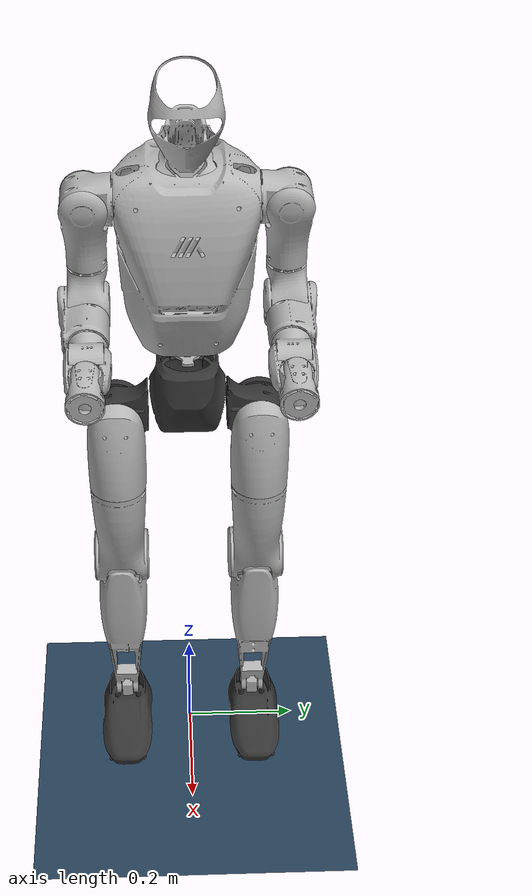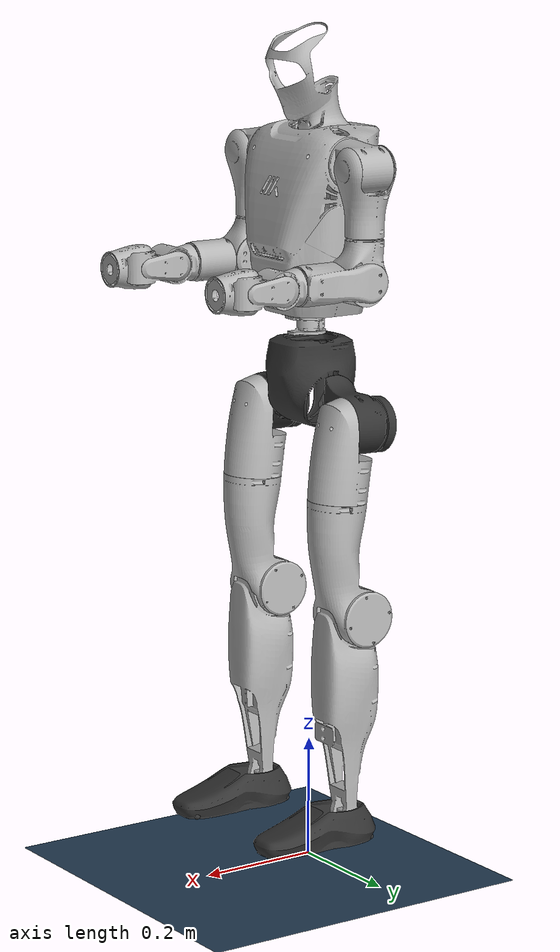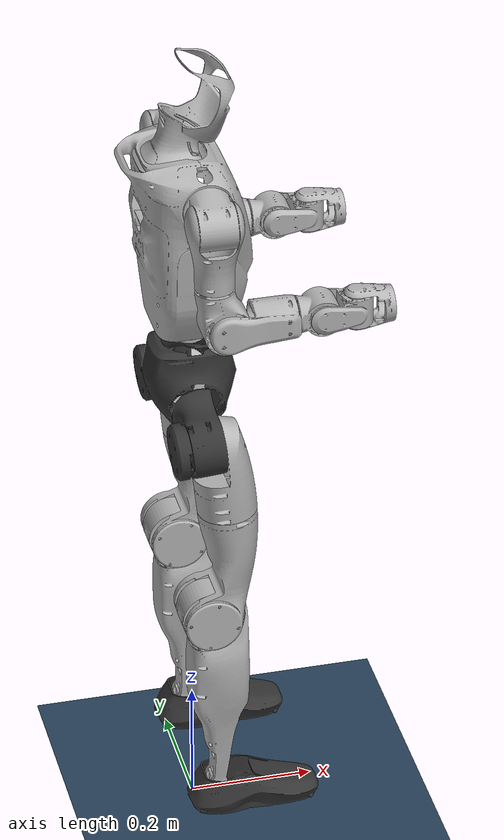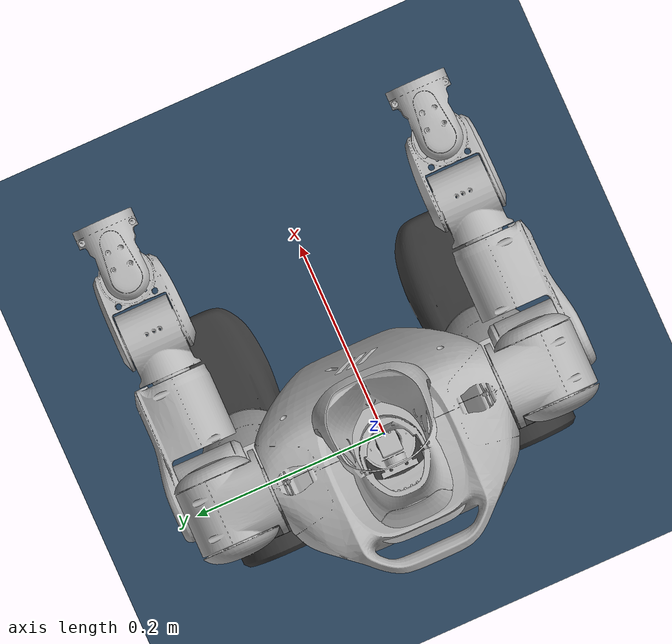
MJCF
<mujoco model="scene_o1">
  <include file="o1.xml"/>

  <statistic center="1.0 0.7 1.0" extent="0.8"/>

  <visual>
    <headlight diffuse="0.6 0.6 0.6" ambient="0.1 0.1 0.1" specular="0.9 0.9 0.9"/>
    <rgba haze="0.15 0.25 0.35 1"/>
    <global azimuth="-140" elevation="-20" offheight="1280" offwidth="1280"/>
  </visual>

  <asset>
    <texture type="skybox" builtin="flat" rgb1="0 0 0" rgb2="0 0 0" width="512" height="3072"/>
    <texture type="2d" name="groundplane" builtin="checker" mark="edge" rgb1="0.2 0.3 0.4" rgb2="0.1 0.2 0.3" markrgb="0.8 0.8 0.8" width="300" height="300"/>
    <material name="groundplane" texture="groundplane" texuniform="true" texrepeat="5 5" reflectance="0.2"/>
  </asset>

  <worldbody>
    <light pos="1 0 3.5" dir="0 0 -1" directional="true"/>
    <geom name="floor" size="0 0 0.05" type="plane" material="groundplane"/>
  </worldbody>
</mujoco>

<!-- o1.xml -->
<mujoco model="o1_29dof">
  <compiler angle="radian" meshdir="meshes/"/>
<default>
    <joint damping="0.001" armature="0.01" frictionloss="0.1"/>
  </default>

  <asset>
    <mesh name="pelvis" file="pelvis.STL"/>
    <mesh name="left_hip_pitch_link" file="left_hip_pitch_link.STL"/>
    <mesh name="left_hip_roll_link" file="left_hip_roll_link.STL"/>
    <mesh name="left_hip_yaw_link" file="left_hip_yaw_link.STL"/>
    <mesh name="left_knee_pitch_link" file="left_knee_pitch_link.STL"/>
    <mesh name="left_ankle_pitch_link" file="left_ankle_pitch_link.STL"/>
    <mesh name="left_ankle_roll_link" file="left_ankle_roll_link.STL"/>
    <mesh name="right_hip_pitch_link" file="right_hip_pitch_link.STL"/>
    <mesh name="right_hip_roll_link" file="right_hip_roll_link.STL"/>
    <mesh name="right_hip_yaw_link" file="right_hip_yaw_link.STL"/>
    <mesh name="right_knee_pitch_link" file="right_knee_pitch_link.STL"/>
    <mesh name="right_ankle_pitch_link" file="right_ankle_pitch_link.STL"/>
    <mesh name="right_ankle_roll_link" file="right_ankle_roll_link.STL"/>
    <mesh name="waist_yaw_link" file="waist_yaw_link.STL"/>
    <mesh name="waist_roll_link" file="waist_roll_link.STL"/>
    <mesh name="torso_link" file="torso_link.STL"/>
    <mesh name="left_shoulder_pitch_link" file="left_shoulder_pitch_link.STL"/>
    <mesh name="left_shoulder_roll_link" file="left_shoulder_roll_link.STL"/>
    <mesh name="left_shoulder_yaw_link" file="left_shoulder_yaw_link.STL"/>
    <mesh name="left_elbow_pitch_link" file="left_elbow_pitch_link.STL"/>
    <mesh name="left_wrist_roll_link" file="left_wrist_roll_link.STL"/>
    <mesh name="left_wrist_pitch_link" file="left_wrist_pitch_link.STL"/>
    <mesh name="left_wrist_yaw_link" file="left_wrist_yaw_link.STL"/>
    <mesh name="right_shoulder_pitch_link" file="right_shoulder_pitch_link.STL"/>
    <mesh name="right_shoulder_roll_link" file="right_shoulder_roll_link.STL"/>
    <mesh name="right_shoulder_yaw_link" file="right_shoulder_yaw_link.STL"/>
    <mesh name="right_elbow_pitch_link" file="right_elbow_pitch_link.STL"/>
    <mesh name="right_wrist_roll_link" file="right_wrist_roll_link.STL"/>
    <mesh name="right_wrist_pitch_link" file="right_wrist_pitch_link.STL"/>
    <mesh name="right_wrist_yaw_link" file="right_wrist_yaw_link.STL"/>
    <mesh name="head_link" file="head_link.STL"/>
  </asset>

  <worldbody>
    <body name="pelvis" pos="0 0 0.78">
      <inertial pos="-1.599e-05 -0.00036044 0.0268361" quat="0.999813 0.0193289 0.000435973 -0.00084459" mass="3.68" diaginertia="0.0115785 0.00849884 0.00728878"/>
      <joint name="floating_base_joint" type="free" limited="false" actuatorfrclimited="false"/>
      <geom type="mesh" contype="0" conaffinity="0" group="1" density="0" rgba="0.2 0.2 0.2 1" mesh="pelvis"/>
      <geom type="mesh" rgba="0.2 0.2 0.2 1" mesh="pelvis"/>
      <body name="left_hip_pitch_link" pos="0 0.06525 0">
        <inertial pos="-0.00600842 0.0509883 -0.0259192" quat="0.931173 -0.357857 0.0202959 0.0666512" mass="1.38" diaginertia="0.00174196 0.00155095 0.00125847"/>
        <joint name="left_hip_pitch_joint" pos="0 0 0" axis="0 1 0" range="-2.63845 2.77207" actuatorfrcrange="-88 88"/>
        <geom type="mesh" contype="0" conaffinity="0" group="1" density="0" rgba="0.2 0.2 0.2 1" mesh="left_hip_pitch_link"/>
        <geom type="mesh" rgba="0.2 0.2 0.2 1" mesh="left_hip_pitch_link"/>
        <body name="left_hip_roll_link" pos="0 0.05494 -0.028701" quat="0.999442 0 -0.0333983 0">
          <inertial pos="0.0263765 2.176e-05 -0.0784764" quat="0.99541 0.00246934 -0.0954622 0.00634345" mass="1.55653" diaginertia="0.0029764 0.0028336 0.00165331"/>
          <joint name="left_hip_roll_joint" pos="0 0 0" axis="1 0 0" range="-0.3 2.89397" actuatorfrcrange="-88 88"/>
          <geom type="mesh" contype="0" conaffinity="0" group="1" density="0" rgba="0.7 0.7 0.7 1" mesh="left_hip_roll_link"/>
          <geom type="mesh" rgba="0.7 0.7 0.7 1" mesh="left_hip_roll_link"/>
          <body name="left_hip_yaw_link" pos="0.023639 0 -0.11812">
            <inertial pos="-0.0119008 0.00519796 -0.0974908" quat="0.948125 -0.0101561 -0.113954 -0.296597" mass="0.683572" diaginertia="0.00473202 0.0044081 0.00113266"/>
            <joint name="left_hip_yaw_joint" pos="0 0 0" axis="0 0 1" range="-2.79253 2.79253" actuatorfrcrange="-88 88"/>
            <geom type="mesh" contype="0" conaffinity="0" group="1" density="0" rgba="0.7 0.7 0.7 1" mesh="left_hip_yaw_link"/>
            <geom type="mesh" rgba="0.7 0.7 0.7 1" mesh="left_hip_yaw_link"/>
            <body name="left_knee_pitch_link" pos="-0.044387 0 -0.19197" quat="0.999442 0 0.0333983 0">
              <inertial pos="0.0114074 0.00239698 -0.0846153" quat="0.456818 0.0522273 0.0142858 0.887911" mass="3.66174" diaginertia="0.0330133 0.0326303 0.00299548"/>
              <joint name="left_knee_pitch_joint" pos="0 0 0" axis="0 1 0" range="-0.138956 2.7932" actuatorfrcrange="-140 140"/>
              <geom type="mesh" contype="0" conaffinity="0" group="1" density="0" rgba="0.7 0.7 0.7 1" mesh="left_knee_pitch_link"/>
              <geom type="mesh" rgba="0.7 0.7 0.7 1" mesh="left_knee_pitch_link"/>
              <body name="left_ankle_pitch_link" pos="0.012516 0 -0.33638">
                <inertial pos="-0.00054559 0.00050204 -0.00344178" quat="0.699906 0.100656 0.100656 0.699906" mass="0.083335" diaginertia="0.01 0.01 0.01"/>
                <joint name="left_ankle_pitch_joint" pos="0 0 0" axis="0 1 0" range="-0.992614 0.399939" actuatorfrcrange="-54 54"/>
                <geom type="mesh" contype="0" conaffinity="0" group="1" density="0" rgba="0.7 0.7 0.7 1" mesh="left_ankle_pitch_link"/>
                <geom type="mesh" rgba="0.7 0.7 0.7 1" mesh="left_ankle_pitch_link"/>
                <body name="left_ankle_roll_link" pos="0 0.00050204 -0.01">
                  <inertial pos="0.0438572 6.323e-05 -0.0134285" quat="-8.14506e-05 0.691274 -7.25609e-05 0.722593" mass="0.679694" diaginertia="0.01 0.01 0.01"/>
                  <joint name="left_ankle_roll_joint" pos="0 0 0" axis="1 0 0" range="-0.241984 0.241984" actuatorfrcrange="-54 54"/>
                  <geom type="mesh" contype="0" conaffinity="0" group="1" density="0" rgba="0.2 0.2 0.2 1" mesh="left_ankle_roll_link"/>
                  <geom size="0.005" pos="-0.03 0.03 -0.025" rgba="0.2 0.2 0.2 1"/>
                  <geom size="0.005" pos="-0.03 -0.03 -0.025" rgba="0.2 0.2 0.2 1"/>
                  <geom size="0.005" pos="0.15 0.03 -0.025" rgba="0.2 0.2 0.2 1"/>
                  <geom size="0.005" pos="0.15 -0.03 -0.025" rgba="0.2 0.2 0.2 1"/>
                </body>
              </body>
            </body>
          </body>
        </body>
      </body>
      <body name="right_hip_pitch_link" pos="0 -0.06525 0">
        <inertial pos="-0.00600865 -0.0509881 -0.025919" quat="0.931181 0.357853 0.0202793 -0.0665722" mass="1.38353" diaginertia="0.0017419 0.00155089 0.00125844"/>
        <joint name="right_hip_pitch_joint" pos="0 0 0" axis="0 1 0" range="-2.63845 2.77207" actuatorfrcrange="-88 88"/>
        <geom type="mesh" contype="0" conaffinity="0" group="1" density="0" rgba="0.2 0.2 0.2 1" mesh="right_hip_pitch_link"/>
        <geom type="mesh" rgba="0.2 0.2 0.2 1" mesh="right_hip_pitch_link"/>
        <body name="right_hip_roll_link" pos="0 -0.05494 -0.028701" quat="0.999442 0 -0.0333983 0">
          <inertial pos="0.0263762 -2.235e-05 -0.0784785" quat="0.995409 -0.00254847 -0.0954755 -0.00616215" mass="1.5565" diaginertia="0.002976 0.00283321 0.00165331"/>
          <joint name="right_hip_roll_joint" pos="0 0 0" axis="1 0 0" range="-2.89397 0.3" actuatorfrcrange="-88 88"/>
          <geom type="mesh" contype="0" conaffinity="0" group="1" density="0" rgba="0.7 0.7 0.7 1" mesh="right_hip_roll_link"/>
          <geom type="mesh" rgba="0.7 0.7 0.7 1" mesh="right_hip_roll_link"/>
          <body name="right_hip_yaw_link" pos="0.023639 0 -0.11812">
            <inertial pos="-0.0118993 -0.00519873 -0.0974956" quat="0.948243 0.0101971 -0.11393 0.296228" mass="0.683543" diaginertia="0.00473214 0.00440845 0.00113289"/>
            <joint name="right_hip_yaw_joint" pos="0 0 0" axis="0 0 1" range="-2.79253 2.79253" actuatorfrcrange="-88 88"/>
            <geom type="mesh" contype="0" conaffinity="0" group="1" density="0" rgba="0.7 0.7 0.7 1" mesh="right_hip_yaw_link"/>
            <geom type="mesh" rgba="0.7 0.7 0.7 1" mesh="right_hip_yaw_link"/>
            <body name="right_knee_pitch_link" pos="-0.044387 0 -0.19197" quat="0.999442 0 0.0333983 0">
              <inertial pos="0.0114075 -0.00239511 -0.0846161" quat="0.887949 0.0142744 0.0522332 0.456744" mass="3.66178" diaginertia="0.0330136 0.0326303 0.00299555"/>
              <joint name="right_knee_pitch_joint" pos="0 0 0" axis="0 1 0" range="-0.138956 2.7932" actuatorfrcrange="-140 140"/>
              <geom type="mesh" contype="0" conaffinity="0" group="1" density="0" rgba="0.7 0.7 0.7 1" mesh="right_knee_pitch_link"/>
              <geom type="mesh" rgba="0.7 0.7 0.7 1" mesh="right_knee_pitch_link"/>
              <body name="right_ankle_pitch_link" pos="0.012516 0 -0.33638">
                <inertial pos="-0.00054559 -0.00050204 -0.00344178" quat="0.699906 0.100656 0.100656 0.699906" mass="0.083335" diaginertia="0.01 0.01 0.01"/>
                <joint name="right_ankle_pitch_joint" pos="0 0 0" axis="0 1 0" range="-0.992614 0.399939" actuatorfrcrange="-54 54"/>
                <geom type="mesh" contype="0" conaffinity="0" group="1" density="0" rgba="0.7 0.7 0.7 1" mesh="right_ankle_pitch_link"/>
                <geom type="mesh" rgba="0.7 0.7 0.7 1" mesh="right_ankle_pitch_link"/>
                <body name="right_ankle_roll_link" pos="0 -0.00050204 -0.01">
                  <inertial pos="0.0438572 -4.677e-05 -0.0134286" quat="2.92084e-05 0.69127 -4.72349e-05 0.722596" mass="0.67971" diaginertia="0.01 0.01 0.01"/>
                  <joint name="right_ankle_roll_joint" pos="0 0 0" axis="1 0 0" range="-0.241984 0.241984" actuatorfrcrange="-54 54"/>
                  <geom type="mesh" contype="0" conaffinity="0" group="1" density="0" rgba="0.2 0.2 0.2 1" mesh="right_ankle_roll_link"/>
                  <geom size="0.005" pos="-0.03 0.03 -0.025" rgba="0.2 0.2 0.2 1"/>
                  <geom size="0.005" pos="-0.03 -0.03 -0.025" rgba="0.2 0.2 0.2 1"/>
                  <geom size="0.005" pos="0.15 0.03 -0.025" rgba="0.2 0.2 0.2 1"/>
                  <geom size="0.005" pos="0.15 -0.03 -0.025" rgba="0.2 0.2 0.2 1"/>
                </body>
              </body>
            </body>
          </body>
        </body>
      </body>
      <body name="waist_yaw_link" pos="0 0 0.104">
        <inertial pos="0.00530711 4.75e-06 0.0216269" quat="-0.000928709 0.776809 0.000152463 0.629736" mass="0.142512" diaginertia="7.3223e-05 6.657e-05 4.8617e-05"/>
        <joint name="waist_yaw_joint" pos="0 0 0" axis="0 0 1" range="-2.61799 2.61799" actuatorfrcrange="-88 88"/>
        <geom type="mesh" contype="0" conaffinity="0" group="1" density="0" rgba="0.7 0.7 0.7 1" mesh="waist_yaw_link"/>
        <body name="waist_roll_link" pos="-0.0017722 0 0.047">
          <inertial pos="0 0 0" quat="0.505983 0.493944 0.493944 0.505983" mass="0.054" diaginertia="5.58e-06 5.14096e-06 3.47904e-06"/>
          <joint name="waist_roll_joint" pos="0 0 0" axis="1 0 0" range="-0.520108 0.520108" actuatorfrcrange="-54 54"/>
          <geom type="mesh" contype="0" conaffinity="0" group="1" density="0" rgba="0.7 0.7 0.7 1" mesh="waist_roll_link"/>
          <body name="torso_link">
            <inertial pos="-0.0116252 0.00012937 0.162902" quat="0.999409 0.00134464 0.0343416 -0.000215167" mass="8.45" diaginertia="0.123591 0.109527 0.0375367"/>
            <joint name="waist_pitch_joint" pos="0 0 0" axis="0 1 0" range="-0.520108 0.520108" actuatorfrcrange="-54 54"/>
            <geom type="mesh" contype="0" conaffinity="0" group="1" density="0" rgba="0.7 0.7 0.7 1" mesh="torso_link"/>
            <geom type="mesh" rgba="0.7 0.7 0.7 1" mesh="torso_link"/>
            <geom type="mesh" contype="0" conaffinity="0" group="1" density="0" rgba="0.7 0.7 0.7 1" mesh="head_link"/>
            <geom type="mesh" rgba="0.7 0.7 0.7 1" mesh="head_link"/>
            <body name="left_shoulder_pitch_link" pos="0.0076153 0.1088 0.237652">
              <inertial pos="0.00562426 0.0400436 -0.00401964" quat="0.586784 0.80503 0.0686434 0.0538389" mass="0.68648" diaginertia="0.000578078 0.000538187 0.000489476"/>
              <joint name="left_shoulder_pitch_joint" pos="0 0 0" axis="0 1 0" range="-3.40339 2.18166" actuatorfrcrange="-27 27"/>
              <geom type="mesh" contype="0" conaffinity="0" group="1" density="0" rgba="0.7 0.7 0.7 1" mesh="left_shoulder_pitch_link"/>
              <geom type="mesh" rgba="0.7 0.7 0.7 1" mesh="left_shoulder_pitch_link"/>
              <body name="left_shoulder_roll_link" pos="0 0.044299 -0.005">
                <inertial pos="-0.00090881 0.00018475 -0.0665643" quat="0.697039 0.0284832 0.0214927 0.716144" mass="0.662102" diaginertia="0.00101988 0.000925928 0.000525623"/>
                <joint name="left_shoulder_roll_joint" pos="0 0 0" axis="1 0 0" range="-1.58825 2.70526" actuatorfrcrange="-27 27"/>
                <geom type="mesh" contype="0" conaffinity="0" group="1" density="0" rgba="0.7 0.7 0.7 1" mesh="left_shoulder_roll_link"/>
                <geom type="mesh" rgba="0.7 0.7 0.7 1" mesh="left_shoulder_roll_link"/>
                <body name="left_shoulder_yaw_link" pos="0 0 -0.105585">
                  <inertial pos="0.0135088 0.00458835 -0.0606993" quat="0.719158 0.0732064 0.128192 0.678984" mass="0.709073" diaginertia="0.000739533 0.000722215 0.000493371"/>
                  <joint name="left_shoulder_yaw_joint" pos="0 0 0" axis="0 0 1" range="-2.9321 2.4609" actuatorfrcrange="-27 27"/>
                  <geom type="mesh" contype="0" conaffinity="0" group="1" density="0" rgba="0.7 0.7 0.7 1" mesh="left_shoulder_yaw_link"/>
                  <geom type="mesh" rgba="0.7 0.7 0.7 1" mesh="left_shoulder_yaw_link"/>
                  <body name="left_elbow_pitch_link" pos="0.0149287 0 -0.0671946">
                    <inertial pos="0.0753859 0.00456624 -0.00029857" quat="-0.162408 0.691671 0.156968 0.685985" mass="0.707835" diaginertia="0.000857036 0.000846652 0.000455562"/>
                    <joint name="left_elbow_pitch_joint" pos="0 0 0" axis="0 1 0" range="-0.53 2.0944" actuatorfrcrange="-27 27"/>
                    <geom type="mesh" contype="0" conaffinity="0" group="1" density="0" rgba="0.7 0.7 0.7 1" mesh="left_elbow_pitch_link"/>
                    <geom type="mesh" rgba="0.7 0.7 0.7 1" mesh="left_elbow_pitch_link"/>
                    <body name="left_wrist_roll_link" pos="0.11065 -0.000743415 0">
                      <inertial pos="0.0358195 0.00209082 -4.229e-05" quat="0.529907 0.534336 0.462791 0.468517" mass="0.346132" diaginertia="0.000141188 0.000127609 9.76032e-05"/>
                      <joint name="left_wrist_roll_joint" pos="0 0 0" axis="1 0 0" range="-2.16421 2.16421" actuatorfrcrange="-27 27"/>
                      <geom type="mesh" contype="0" conaffinity="0" group="1" density="0" rgba="0.7 0.7 0.7 1" mesh="left_wrist_roll_link"/>
                      <geom type="mesh" rgba="0.7 0.7 0.7 1" mesh="left_wrist_roll_link"/>
                      <body name="left_wrist_pitch_link" pos="0.0407104 0 0">
                        <inertial pos="0.0494274 0.0001019 -0.00213864" quat="-0.0115142 0.687837 0.017537 0.725562" mass="0.358329" diaginertia="0.00022909 0.000176311 0.000121229"/>
                        <joint name="left_wrist_pitch_joint" pos="0 0 0" axis="0 1 0" range="-1.71042 1.71042" actuatorfrcrange="-6.5 6.5"/>
                        <geom type="mesh" contype="0" conaffinity="0" group="1" density="0" rgba="0.7 0.7 0.7 1" mesh="left_wrist_pitch_link"/>
                        <geom type="mesh" rgba="0.7 0.7 0.7 1" mesh="left_wrist_pitch_link"/>
                        <body name="left_wrist_yaw_link" pos="0.0570719 0 0">
                          <inertial pos="0.0299423 -0.00053182 -0.00072067" quat="0.67182 -0.197018 -0.194887 0.686921" mass="0.112645" diaginertia="0.01 0.01 0.01"/>
                          <joint name="left_wrist_yaw_joint" pos="0 0 0" axis="0 0 1" range="-1.67552 1.74533" actuatorfrcrange="-6.5 6.5"/>
                          <geom type="mesh" contype="0" conaffinity="0" group="1" density="0" rgba="0.7 0.7 0.7 1" mesh="left_wrist_yaw_link"/>
                          <geom type="mesh" rgba="0.7 0.7 0.7 1" mesh="left_wrist_yaw_link"/>
                        </body>
                      </body>
                    </body>
                  </body>
                </body>
              </body>
            </body>
            <body name="right_shoulder_pitch_link" pos="0.0076153 -0.1088 0.237652">
              <inertial pos="0.00562426 -0.0400436 -0.00401964" quat="0.80503 0.586784 -0.0538389 -0.0686434" mass="0.68648" diaginertia="0.000578078 0.000538187 0.000489476"/>
              <joint name="right_shoulder_pitch_joint" pos="0 0 0" axis="0 1 0" range="-3.40339 2.18166" actuatorfrcrange="-27 27"/>
              <geom type="mesh" contype="0" conaffinity="0" group="1" density="0" rgba="0.7 0.7 0.7 1" mesh="right_shoulder_pitch_link"/>
              <geom type="mesh" rgba="0.7 0.7 0.7 1" mesh="right_shoulder_pitch_link"/>
              <body name="right_shoulder_roll_link" pos="0 -0.044299 -0.005">
                <inertial pos="-0.00090881 -0.00018475 -0.0665643" quat="0.716144 0.0214927 0.0284832 0.697039" mass="0.662102" diaginertia="0.00101988 0.000925928 0.000525623"/>
                <joint name="right_shoulder_roll_joint" pos="0 0 0" axis="1 0 0" range="-2.43 1.58825" actuatorfrcrange="-27 27"/>
                <geom type="mesh" contype="0" conaffinity="0" group="1" density="0" rgba="0.7 0.7 0.7 1" mesh="right_shoulder_roll_link"/>
                <geom type="mesh" rgba="0.7 0.7 0.7 1" mesh="right_shoulder_roll_link"/>
                <body name="right_shoulder_yaw_link" pos="0 0 -0.105585">
                  <inertial pos="0.0135088 -0.00458835 -0.0606993" quat="0.678984 0.128192 0.0732064 0.719158" mass="0.709073" diaginertia="0.000739533 0.000722215 0.000493371"/>
                  <joint name="right_shoulder_yaw_joint" pos="0 0 0" axis="0 0 1" range="-2.4609 2.9321" actuatorfrcrange="-27 27"/>
                  <geom type="mesh" contype="0" conaffinity="0" group="1" density="0" rgba="0.7 0.7 0.7 1" mesh="right_shoulder_yaw_link"/>
                  <geom type="mesh" rgba="0.7 0.7 0.7 1" mesh="right_shoulder_yaw_link"/>
                  <body name="right_elbow_pitch_link" pos="0.0149287 0 -0.0671946">
                    <inertial pos="0.0753859 -0.00456624 -0.00029857" quat="0.162408 0.691671 -0.156968 0.685985" mass="0.707835" diaginertia="0.000857036 0.000846652 0.000455562"/>
                    <joint name="right_elbow_pitch_joint" pos="0 0 0" axis="0 1 0" range="-0.53 2.0944" actuatorfrcrange="-27 27"/>
                    <geom type="mesh" contype="0" conaffinity="0" group="1" density="0" rgba="0.7 0.7 0.7 1" mesh="right_elbow_pitch_link"/>
                    <geom type="mesh" rgba="0.7 0.7 0.7 1" mesh="right_elbow_pitch_link"/>
                    <body name="right_wrist_roll_link" pos="0.11065 0.000743415 0">
                      <inertial pos="0.0358195 -0.00209082 -4.229e-05" quat="0.468517 0.462791 0.534336 0.529907" mass="0.346132" diaginertia="0.000141188 0.000127609 9.76032e-05"/>
                      <joint name="right_wrist_roll_joint" pos="0 0 0" axis="1 0 0" range="-2.16421 2.16421" actuatorfrcrange="-27 27"/>
                      <geom type="mesh" contype="0" conaffinity="0" group="1" density="0" rgba="0.7 0.7 0.7 1" mesh="right_wrist_roll_link"/>
                      <geom type="mesh" rgba="0.7 0.7 0.7 1" mesh="right_wrist_roll_link"/>
                      <body name="right_wrist_pitch_link" pos="0.0407104 0 0">
                        <inertial pos="0.0494274 -0.0001019 -0.00213864" quat="0.0115142 0.687837 -0.017537 0.725562" mass="0.358329" diaginertia="0.00022909 0.000176311 0.000121229"/>
                        <joint name="right_wrist_pitch_joint" pos="0 0 0" axis="0 1 0" range="-1.71042 1.71042" actuatorfrcrange="-6.5 6.5"/>
                        <geom type="mesh" contype="0" conaffinity="0" group="1" density="0" rgba="0.7 0.7 0.7 1" mesh="right_wrist_pitch_link"/>
                        <geom type="mesh" rgba="0.7 0.7 0.7 1" mesh="right_wrist_pitch_link"/>
                        <body name="right_wrist_yaw_link" pos="0.0570719 0 0">
                          <inertial pos="0.0299423 0.00053182 -0.00072067" quat="0.68509 -0.19787 -0.19413 0.673657" mass="0.112645" diaginertia="0.01 0.01 0.01"/>
                          <joint name="right_wrist_yaw_joint" pos="0 0 0" axis="0 0 1" range="-1.74533 1.67552" actuatorfrcrange="-6.5 6.5"/>
                          <geom type="mesh" contype="0" conaffinity="0" group="1" density="0" rgba="0.7 0.7 0.7 1" mesh="right_wrist_yaw_link"/>
                          <geom type="mesh" rgba="0.7 0.7 0.7 1" mesh="right_wrist_yaw_link"/>
                        </body>
                      </body>
                    </body>
                  </body>
                </body>
              </body>
            </body>
          </body>
        </body>
      </body>
    </body>
  </worldbody>
  <actuator>
    <motor name="left_hip_pitch_joint" joint="left_hip_pitch_joint"/>
    <motor name="left_hip_roll_joint" joint="left_hip_roll_joint"/>
    <motor name="left_hip_yaw_joint" joint="left_hip_yaw_joint"/>
    <motor name="left_knee_pitch_joint" joint="left_knee_pitch_joint"/>
    <motor name="left_ankle_pitch_joint" joint="left_ankle_pitch_joint"/>
    <motor name="left_ankle_roll_joint" joint="left_ankle_roll_joint"/>
    <motor name="right_hip_pitch_joint" joint="right_hip_pitch_joint"/>
    <motor name="right_hip_roll_joint" joint="right_hip_roll_joint"/>
    <motor name="right_hip_yaw_joint" joint="right_hip_yaw_joint"/>
    <motor name="right_knee_pitch_joint" joint="right_knee_pitch_joint"/>
    <motor name="right_ankle_pitch_joint" joint="right_ankle_pitch_joint"/>
    <motor name="right_ankle_roll_joint" joint="right_ankle_roll_joint"/>
    <motor name="waist_yaw_joint" joint="waist_yaw_joint"/>
    <motor name="waist_roll_joint" joint="waist_roll_joint"/>
    <motor name="waist_pitch_joint" joint="waist_pitch_joint"/>
    <motor name="left_shoulder_pitch_joint" joint="left_shoulder_pitch_joint"/>
    <motor name="left_shoulder_roll_joint" joint="left_shoulder_roll_joint"/>
    <motor name="left_shoulder_yaw_joint" joint="left_shoulder_yaw_joint"/>
    <motor name="left_elbow_pitch_joint" joint="left_elbow_pitch_joint"/>
    <motor name="left_wrist_roll_joint" joint="left_wrist_roll_joint"/>
    <motor name="left_wrist_pitch_joint" joint="left_wrist_pitch_joint"/>
    <motor name="left_wrist_yaw_joint" joint="left_wrist_yaw_joint"/>
    <motor name="right_shoulder_pitch_joint" joint="right_shoulder_pitch_joint"/>
    <motor name="right_shoulder_roll_joint" joint="right_shoulder_roll_joint"/>
    <motor name="right_shoulder_yaw_joint" joint="right_shoulder_yaw_joint"/>
    <motor name="right_elbow_pitch_joint" joint="right_elbow_pitch_joint"/>
    <motor name="right_wrist_roll_joint" joint="right_wrist_roll_joint"/>
    <motor name="right_wrist_pitch_joint" joint="right_wrist_pitch_joint"/>
    <motor name="right_wrist_yaw_joint" joint="right_wrist_yaw_joint"/>
  </actuator>
</mujoco>
